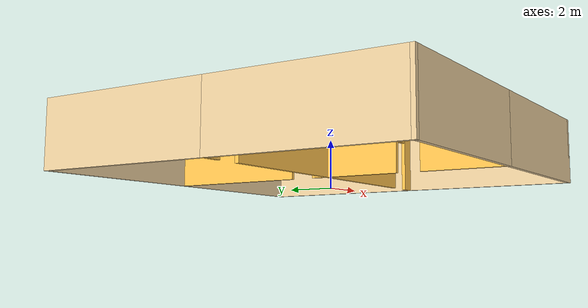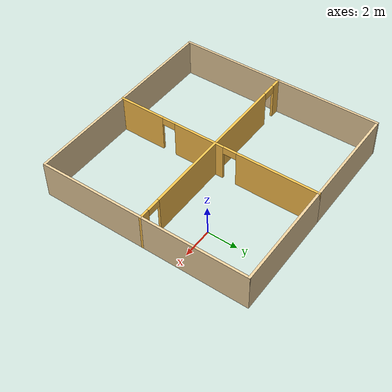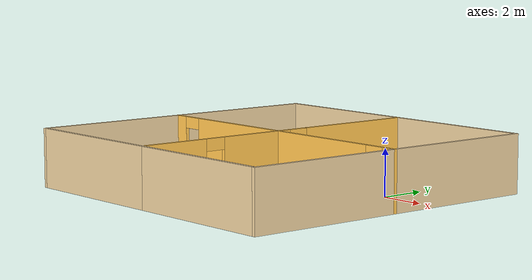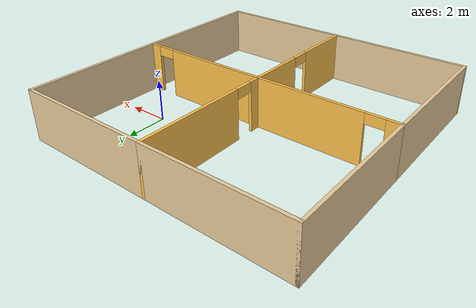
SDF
<?xml version='1.0'?>
<sdf version='1.7'>
  <model name='plane_3'>
    <pose>-3.98486 -2.27315 0 0 -0 0</pose>
    <link name='Wall_14'>
      <collision name='Wall_14_Collision'>
        <geometry>
          <box>
            <size>7 0.15 2.5</size>
          </box>
        </geometry>
        <pose>0 0 1.25 0 -0 0</pose>
      </collision>
      <visual name='Wall_14_Visual'>
        <pose>0 0 1.25 0 -0 0</pose>
        <geometry>
          <box>
            <size>7 0.15 2.5</size>
          </box>
        </geometry>
        <material>
          <script>
            <uri>file://media/materials/scripts/gazebo.material</uri>
            <name>Gazebo/Grey</name>
          </script>
          <ambient>0.921569 0.807843 0.615686 1</ambient>
        </material>
        <meta>
          <layer>0</layer>
        </meta>
      </visual>
      <pose>-3.425 -6.85 0 0 -0 3.14159</pose>
    </link>
    <link name='Wall_26'>
      <collision name='Wall_26_Collision'>
        <geometry>
          <box>
            <size>7 0.15 2.5</size>
          </box>
        </geometry>
        <pose>0 0 1.25 0 -0 0</pose>
      </collision>
      <visual name='Wall_26_Visual'>
        <pose>0 0 1.25 0 -0 0</pose>
        <geometry>
          <box>
            <size>7 0.15 2.5</size>
          </box>
        </geometry>
        <material>
          <script>
            <uri>file://media/materials/scripts/gazebo.material</uri>
            <name>Gazebo/Grey</name>
          </script>
          <ambient>0.921569 0.807843 0.615686 1</ambient>
        </material>
        <meta>
          <layer>0</layer>
        </meta>
      </visual>
      <pose>-6.85 -3.425 0 0 -0 1.5708</pose>
    </link>
    <link name='Wall_27'>
      <pose>-3.425 0 0 0 -0 0</pose>
      <visual name='Wall_27_Visual_0'>
        <pose>-3.12884 0 1.25 0 -0 0</pose>
        <geometry>
          <box>
            <size>0.74232 0.15 2.5</size>
          </box>
        </geometry>
        <material>
          <script>
            <uri>file://media/materials/scripts/gazebo.material</uri>
            <name>Gazebo/Grey</name>
          </script>
          <ambient>1 0.764706 0.305882 1</ambient>
        </material>
        <meta>
          <layer>0</layer>
        </meta>
      </visual>
      <collision name='Wall_27_Collision_0'>
        <geometry>
          <box>
            <size>0.74232 0.15 2.5</size>
          </box>
        </geometry>
        <pose>-3.12884 0 1.25 0 -0 0</pose>
      </collision>
      <visual name='Wall_27_Visual_1'>
        <pose>0.82116 0 1.25 0 -0 0</pose>
        <geometry>
          <box>
            <size>5.35768 0.15 2.5</size>
          </box>
        </geometry>
        <material>
          <script>
            <uri>file://media/materials/scripts/gazebo.material</uri>
            <name>Gazebo/Grey</name>
          </script>
          <ambient>1 0.764706 0.305882 1</ambient>
        </material>
        <meta>
          <layer>0</layer>
        </meta>
      </visual>
      <collision name='Wall_27_Collision_1'>
        <geometry>
          <box>
            <size>5.35768 0.15 2.5</size>
          </box>
        </geometry>
        <pose>0.82116 0 1.25 0 -0 0</pose>
      </collision>
      <visual name='Wall_27_Visual_2'>
        <pose>-2.30768 0 2.25 0 -0 0</pose>
        <geometry>
          <box>
            <size>0.9 0.15 0.5</size>
          </box>
        </geometry>
        <material>
          <script>
            <uri>file://media/materials/scripts/gazebo.material</uri>
            <name>Gazebo/Grey</name>
          </script>
          <ambient>1 0.764706 0.305882 1</ambient>
        </material>
        <meta>
          <layer>0</layer>
        </meta>
      </visual>
      <collision name='Wall_27_Collision_2'>
        <geometry>
          <box>
            <size>0.9 0.15 0.5</size>
          </box>
        </geometry>
        <pose>-2.30768 0 2.25 0 -0 0</pose>
      </collision>
    </link>
    <link name='Wall_28'>
      <pose>-0 -3.425 0 0 -0 -1.5708</pose>
      <visual name='Wall_28_Visual_0'>
        <pose>-2.02668 0 1.25 0 -0 0</pose>
        <geometry>
          <box>
            <size>2.94663 0.15 2.5</size>
          </box>
        </geometry>
        <material>
          <script>
            <uri>file://media/materials/scripts/gazebo.material</uri>
            <name>Gazebo/Grey</name>
          </script>
          <ambient>1 0.764706 0.305882 1</ambient>
        </material>
        <meta>
          <layer>0</layer>
        </meta>
      </visual>
      <collision name='Wall_28_Collision_0'>
        <geometry>
          <box>
            <size>2.94663 0.15 2.5</size>
          </box>
        </geometry>
        <pose>-2.02668 0 1.25 0 -0 0</pose>
      </collision>
      <visual name='Wall_28_Visual_1'>
        <pose>1.92332 0 1.25 0 -0 0</pose>
        <geometry>
          <box>
            <size>3.15337 0.15 2.5</size>
          </box>
        </geometry>
        <material>
          <script>
            <uri>file://media/materials/scripts/gazebo.material</uri>
            <name>Gazebo/Grey</name>
          </script>
          <ambient>1 0.764706 0.305882 1</ambient>
        </material>
        <meta>
          <layer>0</layer>
        </meta>
      </visual>
      <collision name='Wall_28_Collision_1'>
        <geometry>
          <box>
            <size>3.15337 0.15 2.5</size>
          </box>
        </geometry>
        <pose>1.92332 0 1.25 0 -0 0</pose>
      </collision>
      <visual name='Wall_28_Visual_2'>
        <pose>-0.103367 0 2.25 0 -0 0</pose>
        <geometry>
          <box>
            <size>0.9 0.15 0.5</size>
          </box>
        </geometry>
        <material>
          <script>
            <uri>file://media/materials/scripts/gazebo.material</uri>
            <name>Gazebo/Grey</name>
          </script>
          <ambient>1 0.764706 0.305882 1</ambient>
        </material>
        <meta>
          <layer>0</layer>
        </meta>
      </visual>
      <collision name='Wall_28_Collision_2'>
        <geometry>
          <box>
            <size>0.9 0.15 0.5</size>
          </box>
        </geometry>
        <pose>-0.103367 0 2.25 0 -0 0</pose>
      </collision>
    </link>
    <link name='Wall_29'>
      <collision name='Wall_29_Collision'>
        <geometry>
          <box>
            <size>7 0.15 2.5</size>
          </box>
        </geometry>
        <pose>0 0 1.25 0 -0 0</pose>
      </collision>
      <visual name='Wall_29_Visual'>
        <pose>0 0 1.25 0 -0 0</pose>
        <geometry>
          <box>
            <size>7 0.15 2.5</size>
          </box>
        </geometry>
        <material>
          <script>
            <uri>file://media/materials/scripts/gazebo.material</uri>
            <name>Gazebo/Grey</name>
          </script>
          <ambient>0.921569 0.807843 0.615686 1</ambient>
        </material>
        <meta>
          <layer>0</layer>
        </meta>
      </visual>
      <pose>3.425 -6.85 0 0 -0 0</pose>
    </link>
    <link name='Wall_30'>
      <collision name='Wall_30_Collision'>
        <geometry>
          <box>
            <size>7 0.15 2.5</size>
          </box>
        </geometry>
        <pose>0 0 1.25 0 -0 0</pose>
      </collision>
      <visual name='Wall_30_Visual'>
        <pose>0 0 1.25 0 -0 0</pose>
        <geometry>
          <box>
            <size>7 0.15 2.5</size>
          </box>
        </geometry>
        <material>
          <script>
            <uri>file://media/materials/scripts/gazebo.material</uri>
            <name>Gazebo/Grey</name>
          </script>
          <ambient>0.921569 0.807843 0.615686 1</ambient>
        </material>
        <meta>
          <layer>0</layer>
        </meta>
      </visual>
      <pose>6.85 -3.425 0 0 -0 1.5708</pose>
    </link>
    <link name='Wall_31'>
      <pose>3.425 0 0 0 -0 3.14159</pose>
      <visual name='Wall_31_Visual_0'>
        <pose>-3.16028 0 1.25 0 -0 0</pose>
        <geometry>
          <box>
            <size>0.679447 0.15 2.5</size>
          </box>
        </geometry>
        <material>
          <script>
            <uri>file://media/materials/scripts/gazebo.material</uri>
            <name>Gazebo/Grey</name>
          </script>
          <ambient>1 0.764706 0.305882 1</ambient>
        </material>
        <meta>
          <layer>0</layer>
        </meta>
      </visual>
      <collision name='Wall_31_Collision_0'>
        <geometry>
          <box>
            <size>0.679447 0.15 2.5</size>
          </box>
        </geometry>
        <pose>-3.16028 0 1.25 0 -0 0</pose>
      </collision>
      <visual name='Wall_31_Visual_1'>
        <pose>0.789724 0 1.25 0 -0 0</pose>
        <geometry>
          <box>
            <size>5.42055 0.15 2.5</size>
          </box>
        </geometry>
        <material>
          <script>
            <uri>file://media/materials/scripts/gazebo.material</uri>
            <name>Gazebo/Grey</name>
          </script>
          <ambient>1 0.764706 0.305882 1</ambient>
        </material>
        <meta>
          <layer>0</layer>
        </meta>
      </visual>
      <collision name='Wall_31_Collision_1'>
        <geometry>
          <box>
            <size>5.42055 0.15 2.5</size>
          </box>
        </geometry>
        <pose>0.789724 0 1.25 0 -0 0</pose>
      </collision>
      <visual name='Wall_31_Visual_2'>
        <pose>-2.37055 0 2.25 0 -0 0</pose>
        <geometry>
          <box>
            <size>0.9 0.15 0.5</size>
          </box>
        </geometry>
        <material>
          <script>
            <uri>file://media/materials/scripts/gazebo.material</uri>
            <name>Gazebo/Grey</name>
          </script>
          <ambient>1 0.764706 0.305882 1</ambient>
        </material>
        <meta>
          <layer>0</layer>
        </meta>
      </visual>
      <collision name='Wall_31_Collision_2'>
        <geometry>
          <box>
            <size>0.9 0.15 0.5</size>
          </box>
        </geometry>
        <pose>-2.37055 0 2.25 0 -0 0</pose>
      </collision>
    </link>
    <link name='Wall_33'>
      <collision name='Wall_33_Collision'>
        <geometry>
          <box>
            <size>7 0.15 2.5</size>
          </box>
        </geometry>
        <pose>0 0 1.25 0 -0 0</pose>
      </collision>
      <visual name='Wall_33_Visual'>
        <pose>0 0 1.25 0 -0 0</pose>
        <geometry>
          <box>
            <size>7 0.15 2.5</size>
          </box>
        </geometry>
        <material>
          <script>
            <uri>file://media/materials/scripts/gazebo.material</uri>
            <name>Gazebo/Grey</name>
          </script>
          <ambient>0.921569 0.807843 0.615686 1</ambient>
        </material>
        <meta>
          <layer>0</layer>
        </meta>
      </visual>
      <pose>-6.85 3.425 0 0 -0 1.5708</pose>
    </link>
    <link name='Wall_34'>
      <collision name='Wall_34_Collision'>
        <geometry>
          <box>
            <size>7 0.15 2.5</size>
          </box>
        </geometry>
        <pose>0 0 1.25 0 -0 0</pose>
      </collision>
      <visual name='Wall_34_Visual'>
        <pose>0 0 1.25 0 -0 0</pose>
        <geometry>
          <box>
            <size>7 0.15 2.5</size>
          </box>
        </geometry>
        <material>
          <script>
            <uri>file://media/materials/scripts/gazebo.material</uri>
            <name>Gazebo/Grey</name>
          </script>
          <ambient>0.921569 0.807843 0.615686 1</ambient>
        </material>
        <meta>
          <layer>0</layer>
        </meta>
      </visual>
      <pose>-3.425 6.85 0 0 -0 0</pose>
    </link>
    <link name='Wall_35'>
      <pose>-0 3.425 0 0 -0 -1.5708</pose>
      <visual name='Wall_35_Visual_0'>
        <pose>-0.776775 0 1.25 0 -0 0</pose>
        <geometry>
          <box>
            <size>5.44645 0.15 2.5</size>
          </box>
        </geometry>
        <material>
          <script>
            <uri>file://media/materials/scripts/gazebo.material</uri>
            <name>Gazebo/Grey</name>
          </script>
          <ambient>1 0.764706 0.305882 1</ambient>
        </material>
        <meta>
          <layer>0</layer>
        </meta>
      </visual>
      <collision name='Wall_35_Collision_0'>
        <geometry>
          <box>
            <size>5.44645 0.15 2.5</size>
          </box>
        </geometry>
        <pose>-0.776775 0 1.25 0 -0 0</pose>
      </collision>
      <visual name='Wall_35_Visual_1'>
        <pose>3.17322 0 1.25 0 -0 0</pose>
        <geometry>
          <box>
            <size>0.65355 0.15 2.5</size>
          </box>
        </geometry>
        <material>
          <script>
            <uri>file://media/materials/scripts/gazebo.material</uri>
            <name>Gazebo/Grey</name>
          </script>
          <ambient>1 0.764706 0.305882 1</ambient>
        </material>
        <meta>
          <layer>0</layer>
        </meta>
      </visual>
      <collision name='Wall_35_Collision_1'>
        <geometry>
          <box>
            <size>0.65355 0.15 2.5</size>
          </box>
        </geometry>
        <pose>3.17322 0 1.25 0 -0 0</pose>
      </collision>
      <visual name='Wall_35_Visual_2'>
        <pose>2.39645 0 2.25 0 -0 0</pose>
        <geometry>
          <box>
            <size>0.9 0.15 0.5</size>
          </box>
        </geometry>
        <material>
          <script>
            <uri>file://media/materials/scripts/gazebo.material</uri>
            <name>Gazebo/Grey</name>
          </script>
          <ambient>1 0.764706 0.305882 1</ambient>
        </material>
        <meta>
          <layer>0</layer>
        </meta>
      </visual>
      <collision name='Wall_35_Collision_2'>
        <geometry>
          <box>
            <size>0.9 0.15 0.5</size>
          </box>
        </geometry>
        <pose>2.39645 0 2.25 0 -0 0</pose>
      </collision>
    </link>
    <link name='Wall_37'>
      <collision name='Wall_37_Collision'>
        <geometry>
          <box>
            <size>7 0.15 2.5</size>
          </box>
        </geometry>
        <pose>0 0 1.25 0 -0 0</pose>
      </collision>
      <visual name='Wall_37_Visual'>
        <pose>0 0 1.25 0 -0 0</pose>
        <geometry>
          <box>
            <size>7 0.15 2.5</size>
          </box>
        </geometry>
        <material>
          <script>
            <uri>file://media/materials/scripts/gazebo.material</uri>
            <name>Gazebo/Grey</name>
          </script>
          <ambient>0.921569 0.807843 0.615686 1</ambient>
        </material>
        <meta>
          <layer>0</layer>
        </meta>
      </visual>
      <pose>3.425 6.85 0 0 -0 0</pose>
    </link>
    <link name='Wall_38'>
      <collision name='Wall_38_Collision'>
        <geometry>
          <box>
            <size>7 0.15 2.5</size>
          </box>
        </geometry>
        <pose>0 0 1.25 0 -0 0</pose>
      </collision>
      <visual name='Wall_38_Visual'>
        <pose>0 0 1.25 0 -0 0</pose>
        <geometry>
          <box>
            <size>7 0.15 2.5</size>
          </box>
        </geometry>
        <material>
          <script>
            <uri>file://media/materials/scripts/gazebo.material</uri>
            <name>Gazebo/Grey</name>
          </script>
          <ambient>0.921569 0.807843 0.615686 1</ambient>
        </material>
        <meta>
          <layer>0</layer>
        </meta>
      </visual>
      <pose>6.85 3.425 0 0 -0 -1.5708</pose>
    </link>
    <static>1</static>
  </model>
</sdf>
